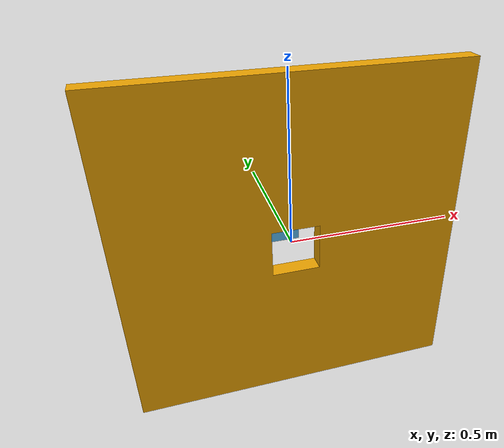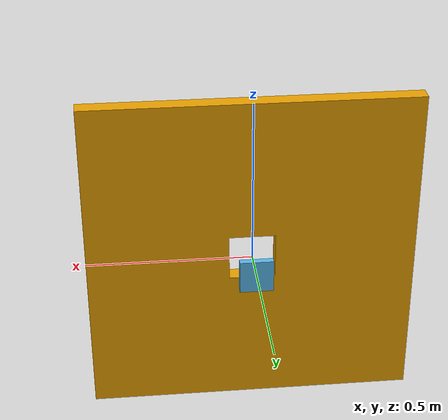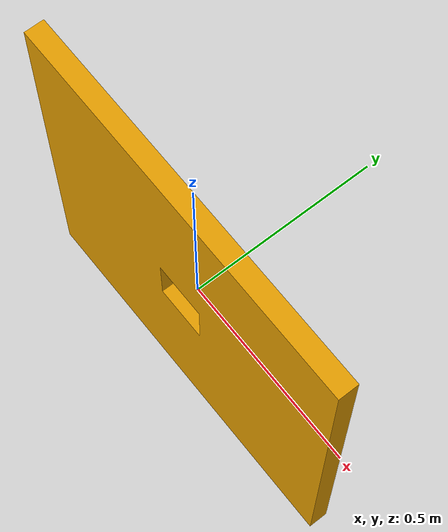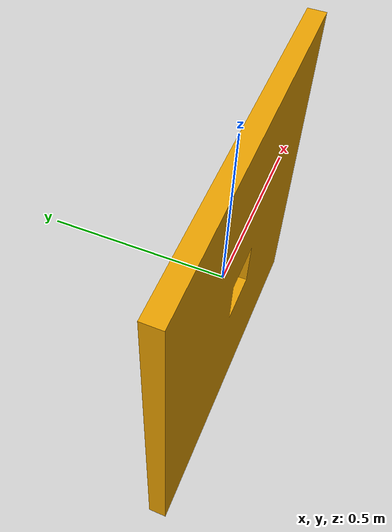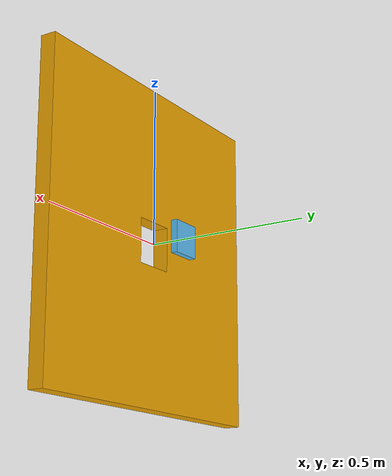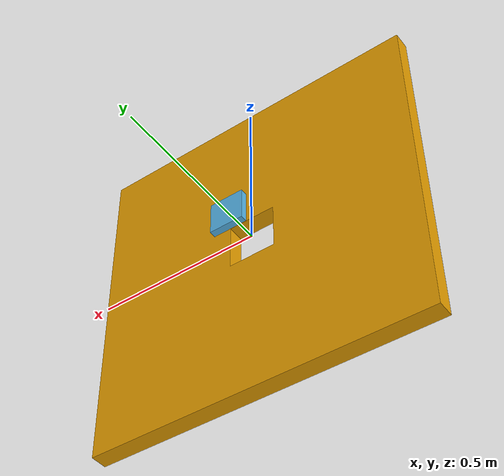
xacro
<?xml version="1.0" encoding="UTF-8"?>

<robot name="goal" xmlns:xacro="http://www.ros.org/wiki/xacro">
    <xacro:include filename="$(find my_robot_description)/urdf/links_joints.xacro"/>

    <xacro:m_link_wall name="base" origin_rpy="1.57 0 0 " origin_xyz="-0.5 0 -0.5" mass="100" ixx="0.0"
                       ixy="0" ixz="0" iyy="0.0" iyz="0" izz="0.0"/>
    <xacro:m_link_button name="button" origin_rpy="0 0 0" origin_xyz="0.0 0.0 0.0" size="0.1 0.02 0.1" mass="0.1"
                         ixx="0.1" ixy="0" ixz="0" iyy="0.1" iyz="0" izz="0.1"/>

    <joint name="wall_button" type="prismatic">
        <parent link="base"/>
        <child link="button"/>
        <origin xyz="0 0 0" rpy="0 0 0"/>
        <axis xyz="0 1 0"/>
        <limit effort="100" lower="0.01" upper="0.2" velocity="1"/>
    </joint>

    <transmission name="wall_button_trans">
        <type>transmission_interface/SimpleTransmission</type>
        <joint name="wall_button">
            <hardwareInterface>hardware_interface/EffortJointInterface</hardwareInterface>
        </joint>
        <actuator name="motor_wall_button">
            <hardwareInterface>hardware_interface/EffortJointInterface</hardwareInterface>
            <mechanicalReduction>1</mechanicalReduction>
        </actuator>
    </transmission>

    <gazebo>
        <plugin name="gazebo_ros_control" filename="libgazebo_ros_control.so">
        </plugin>
    </gazebo>

    <gazebo reference="base">
        <gravity>0</gravity>
    </gazebo>

    <gazebo reference="button">
        <gravity>0</gravity>
    </gazebo>
</robot>

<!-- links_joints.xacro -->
<robot xmlns:xacro="http://www.ros.org/wiki/xacro">

    <xacro:macro name="m_joint_revolute" params="name type axis_xyz origin_rpy origin_xyz parent child lower upper">
        <joint name="${name}" type="${type}">
            <axis xyz="${axis_xyz}"/>
            <limit effort="1000.0" lower="${lower}" upper="${upper}" velocity="1"/>
            <origin rpy="${origin_rpy}" xyz="${origin_xyz}"/>
            <parent link="${parent}"/>
            <child link="${child}"/>
        </joint>

        <transmission name="trans_${name}">
            <type>transmission_interface/SimpleTransmission</type>
            <joint name="${name}">
                <hardwareInterface>hardware_interface/EffortJointInterface</hardwareInterface>
            </joint>
            <actuator name="motor_${name}">
                <hardwareInterface>hardware_interface/EffortJointInterface</hardwareInterface>
                <mechanicalReduction>1</mechanicalReduction>
            </actuator>
        </transmission>
    </xacro:macro>

        <xacro:macro name="m_joint_revolute_without_controller" params="name type axis_xyz origin_rpy origin_xyz parent child lower upper">
        <joint name="${name}" type="${type}">
            <axis xyz="${axis_xyz}"/>
            <limit effort="1000.0" lower="${lower}" upper="${upper}" velocity="1"/>
            <origin rpy="${origin_rpy}" xyz="${origin_xyz}"/>
            <parent link="${parent}"/>
            <child link="${child}"/>
        </joint>

    </xacro:macro>

    <xacro:macro name="m_joint_fixed" params="name type axis_xyz origin_rpy origin_xyz parent child">
        <joint name="${name}" type="${type}">
            <axis xyz="${axis_xyz}"/>
            <origin rpy="${origin_rpy}" xyz="${origin_xyz}"/>
            <parent link="${parent}"/>
            <child link="${child}"/>
        </joint>
    </xacro:macro>

    <xacro:macro name="m_link_cylinder" params="name origin_xyz origin_rpy radius length mass ixx ixy ixz iyy iyz izz">
        <link name="${name}">

            <inertial>
                <origin xyz="${origin_xyz}" rpy="${origin_rpy}"/>
                <mass value="${mass}"/>
                <inertia ixx="${ixx}" ixy="${ixy}" ixz="${ixz}" iyy="${iyy}" iyz="${iyz}" izz="${izz}"/>
            </inertial>

            <collision>
                <origin xyz="${origin_xyz}" rpy="${origin_rpy}"/>
                <geometry>
                    <cylinder radius="${radius}" length="${length}"/>
                </geometry>
            </collision>

            <visual>
                <origin rpy="${origin_rpy}" xyz="${origin_xyz}"/>
                <geometry>

                    <cylinder radius="${radius}" length="${length}"/>
                </geometry>
            </visual>
        </link>
    </xacro:macro>

    <xacro:macro name="m_link1" params="name origin_xyz origin_rpy radius length mass ixx ixy ixz iyy iyz izz">
        <link name="${name}">

            <inertial>
                <origin xyz="${origin_xyz}" rpy="${origin_rpy}"/>
                <mass value="${mass}"/>
                <inertia ixx="${ixx}" ixy="${ixy}" ixz="${ixz}" iyy="${iyy}" iyz="${iyz}" izz="${izz}"/>
            </inertial>

            <collision>
                <origin xyz="${origin_xyz}" rpy="${origin_rpy}"/>
                <geometry>
                    <cylinder radius="${radius}" length="${length}"/>
                </geometry>
            </collision>

            <visual>
                <origin rpy="1.57 1.57 0" xyz="-0.14 0.11 0.76"/>
                <geometry>
                    <mesh scale="0.004 0.004 0.004" filename="package://my_robot_description/meshes/link1.STL"/>
                </geometry>
            </visual>
        </link>
    </xacro:macro>

    <xacro:macro name="m_link2" params="name origin_xyz origin_rpy radius length mass ixx ixy ixz iyy iyz izz">
        <link name="${name}">

            <inertial>
                <origin xyz="${origin_xyz}" rpy="${origin_rpy}"/>
                <mass value="${mass}"/>
                <inertia ixx="${ixx}" ixy="${ixy}" ixz="${ixz}" iyy="${iyy}" iyz="${iyz}" izz="${izz}"/>
            </inertial>

            <collision>
                <origin xyz="${origin_xyz}" rpy="${origin_rpy}"/>
                <geometry>
                    <cylinder radius="${radius}" length="${length}"/>
                </geometry>
            </collision>

            <visual>
                <origin rpy="1.57 1.57 0" xyz="-0.12 0.1 0.82"/>
                <geometry>
                    <mesh scale="0.004 0.004 0.004" filename="package://my_robot_description/meshes/link2.STL"/>
                </geometry>
            </visual>
        </link>
    </xacro:macro>

    <xacro:macro name="m_link3" params="name origin_xyz origin_rpy radius length mass ixx ixy ixz iyy iyz izz">
        <link name="${name}">

            <inertial>
                <origin xyz="${origin_xyz}" rpy="${origin_rpy}"/>
                <mass value="${mass}"/>
                <inertia ixx="${ixx}" ixy="${ixy}" ixz="${ixz}" iyy="${iyy}" iyz="${iyz}" izz="${izz}"/>
            </inertial>

            <collision>
                <origin xyz="${origin_xyz}" rpy="${origin_rpy}"/>
                <geometry>
                    <cylinder radius="${radius}" length="${length}"/>
                </geometry>
            </collision>

            <visual>
                <origin rpy="1.57 1.57 0" xyz="-0.04 0.15 0.55"/>
                <geometry>
                    <mesh scale="0.004 0.004 0.004" filename="package://my_robot_description/meshes/grab.STL"/>
                </geometry>
            </visual>
        </link>
    </xacro:macro>

    <xacro:macro name="m_link_base" params="name origin_xyz origin_rpy size mass ixx ixy ixz iyy iyz izz">
        <link name="${name}">

            <inertial>
                <origin xyz="${origin_xyz}" rpy="${origin_rpy}"/>
                <mass value="${mass}"/>
                <inertia ixx="${ixx}" ixy="${ixy}" ixz="${ixz}" iyy="${iyy}" iyz="${iyz}" izz="${izz}"/>
            </inertial>

            <collision>
                <origin xyz="${origin_xyz}" rpy="${origin_rpy}"/>
                <geometry>
                    <box size="${size}"/>
                </geometry>
            </collision>

            <visual>
                <origin rpy="1.57 0 -1.57" xyz="0.28 0.29 0.0"/>
                <geometry>
                    <mesh scale="0.004 0.004 0.004" filename="package://my_robot_description/meshes/base.STL"/>

                </geometry>
            </visual>
        </link>
    </xacro:macro>

    <xacro:macro name="m_link_plate" params="name origin_xyz origin_rpy radius length mass ixx ixy ixz iyy iyz izz">
        <link name="${name}">

            <inertial>
                <origin xyz="${origin_xyz}" rpy="${origin_rpy}"/>
                <mass value="${mass}"/>
                <inertia ixx="${ixx}" ixy="${ixy}" ixz="${ixz}" iyy="${iyy}" iyz="${iyz}" izz="${izz}"/>
            </inertial>

            <collision>
                <origin xyz="${origin_xyz}" rpy="${origin_rpy}"/>
                <geometry>
                    <cylinder radius="${radius}" length="${length}"/>
                </geometry>
            </collision>

            <visual>
                <origin rpy="1.57 0 -1.57" xyz="0.19 0.20 0.0"/>
                <geometry>
                    <mesh scale="0.004 0.004 0.004" filename="package://my_robot_description/meshes/plate.STL"/>
                </geometry>
            </visual>
        </link>
    </xacro:macro>

    <xacro:macro name="m_link_sphere" params="name origin_xyz origin_rpy radius mass ixx ixy ixz iyy iyz izz">
        <link name="${name}">

            <inertial>
                <origin xyz="${origin_xyz}" rpy="${origin_rpy}"/>
                <mass value="${mass}"/>
                <inertia ixx="${ixx}" ixy="${ixy}" ixz="${ixz}" iyy="${iyy}" iyz="${iyz}" izz="${izz}"/>
            </inertial>

        </link>
    </xacro:macro>

        <xacro:macro name="m_link_end_effector" params="name origin_xyz origin_rpy radius mass ixx ixy ixz iyy iyz izz">
        <link name="${name}">

            <inertial>
                <origin xyz="${origin_xyz}" rpy="${origin_rpy}"/>
                <mass value="${mass}"/>
                <inertia ixx="${ixx}" ixy="${ixy}" ixz="${ixz}" iyy="${iyy}" iyz="${iyz}" izz="${izz}"/>
            </inertial>

            <collision>
                <origin xyz="${origin_xyz}" rpy="${origin_rpy}"/>
                <geometry>
                    <sphere radius="${radius}"/>
                </geometry>
            </collision>

        </link>
    </xacro:macro>

    <xacro:macro name="m_link_box" params="name origin_xyz origin_rpy size mass ixx ixy ixz iyy iyz izz">
        <link name="${name}">

            <inertial>
                <origin xyz="${origin_xyz}" rpy="${origin_rpy}"/>
                <mass value="${mass}"/>
                <inertia ixx="${ixx}" ixy="${ixy}" ixz="${ixz}" iyy="${iyy}" iyz="${iyz}" izz="${izz}"/>
            </inertial>

            <collision>
                <origin xyz="${origin_xyz}" rpy="${origin_rpy}"/>
                <geometry>
                    <box size="${size}"/>
                </geometry>
            </collision>

            <visual>
                <origin rpy="${origin_rpy}" xyz="${origin_xyz}"/>
                <geometry>
                    <box size="0.6 0.6 1.7"/>
                </geometry>
            </visual>
        </link>
    </xacro:macro>

    <xacro:macro name="m_link_button" params="name origin_xyz origin_rpy size mass ixx ixy ixz iyy iyz izz">
        <link name="${name}">

            <inertial>
                <origin xyz="${origin_xyz}" rpy="${origin_rpy}"/>
                <mass value="${mass}"/>
                <inertia ixx="${ixx}" ixy="${ixy}" ixz="${ixz}" iyy="${iyy}" iyz="${iyz}" izz="${izz}"/>
            </inertial>

            <collision>
                <origin xyz="${origin_xyz}" rpy="${origin_rpy}"/>
                <geometry>
                    <box size="${size}"/>
                </geometry>
            </collision>

            <visual>
                <origin rpy="${origin_rpy}" xyz="${origin_xyz}"/>
                <geometry>
                    <box size="${size}"/>
                </geometry>
            </visual>

            <sensor name="button_force_sensor" type="force">
                <always_on>true</always_on>
                <visualize>true</visualize>
                <contact>
                    <collision>button_collision</collision>
                </contact>
                <update_rate>30</update_rate>
            </sensor>

        </link>
    </xacro:macro>

    <xacro:macro name="m_link_goal" params="name origin_xyz origin_rpy radius mass ixx ixy ixz iyy iyz izz">
        <link name="${name}">

            <inertial>
                <origin xyz="${origin_xyz}" rpy="${origin_rpy}"/>
                <mass value="${mass}"/>
                <inertia ixx="${ixx}" ixy="${ixy}" ixz="${ixz}" iyy="${iyy}" iyz="${iyz}" izz="${izz}"/>
            </inertial>

            <visual>
                <origin rpy="${origin_rpy}" xyz="${origin_xyz}"/>
                <geometry>
                    <sphere radius="${radius}"/>
                </geometry>
            </visual>
        </link>
    </xacro:macro>

    <xacro:macro name="m_link_wall" params="name origin_xyz origin_rpy mass ixx ixy ixz iyy iyz izz">
        <link name="${name}">
            <inertial>
                <origin xyz="${origin_xyz}" rpy="${origin_rpy}"/>
                <mass value="${mass}"/>
                <inertia ixx="${ixx}" ixy="${ixy}" ixz="${ixz}" iyy="${iyy}" iyz="${iyz}" izz="${izz}"/>
            </inertial>

            <collision>
                <origin xyz="${origin_xyz}" rpy="${origin_rpy}"/>
                <geometry>
                    <mesh scale="0.01 0.01 0.01" filename="package://my_robot_description/meshes/wall.STL"/>

                </geometry>
            </collision>

            <visual>
                <origin rpy="${origin_rpy}" xyz="${origin_xyz}"/>
                <geometry>
                    <mesh scale="0.02 0.02 0.01" filename="package://my_robot_description/meshes/wall.STL"/>

                </geometry>
            </visual>
        </link>
    </xacro:macro>

</robot>
